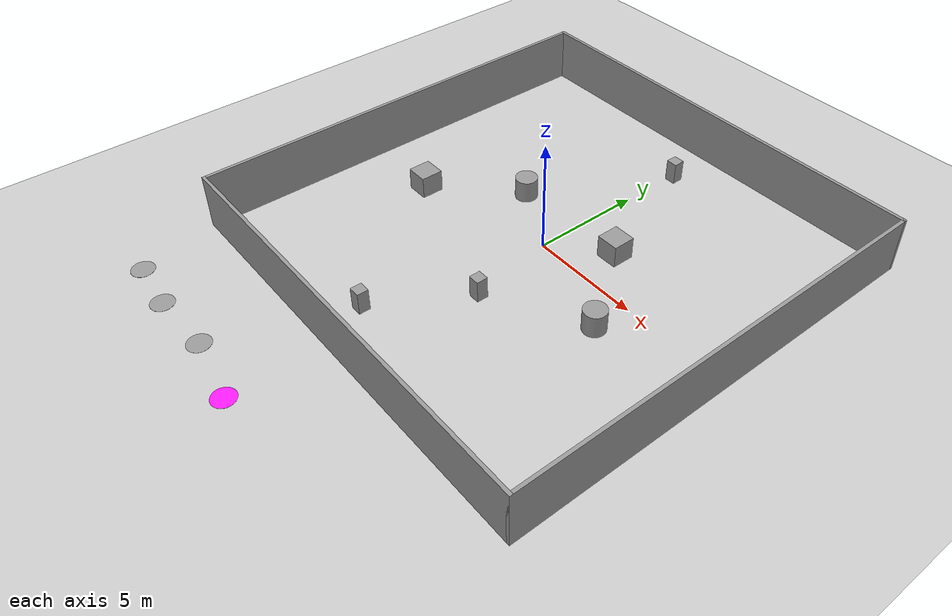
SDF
<sdf version="1.6">
 <world name="default">
  <light name="sun" type="directional">
   <pose>0 0 10 0 -0 0</pose>
   <diffuse>0.8 0.8 0.8 1</diffuse>
   <specular>0.2 0.2 0.2 1</specular>
   <attenuation>
    <range>1000</range>
    <constant>0.9</constant>
    <linear>0.01</linear>
    <quadratic>0.001</quadratic>
   </attenuation>
   <direction>-0.5 0.1 -0.9</direction>
  </light>
  <model name="ground_plane">
   <static>1</static>
   <link name="link">
    <collision name="collision">
     <geometry><plane><normal>0 0 1</normal><size>100 100</size></plane></geometry>
     <surface><friction><ode><mu>100</mu><mu2>50</mu2></ode></friction></surface>
    </collision>
    <visual name="visual">
     <cast_shadows>0</cast_shadows>
     <geometry><plane><normal>0 0 1</normal><size>100 100</size></plane></geometry>
     <material>
      <script><uri>file://media/materials/scripts/gazebo.material</uri><name>Gazebo/Grey</name></script>
     </material>
    </visual>
   </link>
  </model>
  <gravity>0 0 -9.8</gravity>
  <magnetic_field>6e-06 2.3e-05 -4.2e-05</magnetic_field>
  <atmosphere type="adiabatic"/>
  <physics name="default_physics" default="0" type="ode">
   <max_step_size>0.001</max_step_size>
   <real_time_factor>1</real_time_factor>
   <real_time_update_rate>1000</real_time_update_rate>
  </physics>
  <scene><ambient>0.4 0.4 0.4 1</ambient><background>0.7 0.7 0.7 1</background><shadows>1</shadows></scene>
  <spherical_coordinates>
   <surface_model>EARTH_WGS84</surface_model>
   <latitude_deg>0</latitude_deg>
   <longitude_deg>0</longitude_deg>
   <elevation>0</elevation>
   <heading_deg>0</heading_deg>
  </spherical_coordinates>
  <model name="gazebo_sac_train_2020">
   <link name="Wall_3">
    <collision name="Wall_3_Collision">
     <geometry><box><size>20 0.15 2.5</size></box></geometry>
     <pose>0 0 1.25 0 -0 0</pose>
    </collision>
    <visual name="Wall_3_Visual">
     <pose>0 0 1.25 0 -0 0</pose>
     <geometry><box><size>20 0.15 2.5</size></box></geometry>
     <material>
      <script><uri>file://media/materials/scripts/gazebo.material</uri><name>Gazebo/Grey</name></script>
      <ambient>1 1 1 1</ambient>
     </material>
     <meta><layer>0</layer></meta>
    </visual>
    <pose>-9.925 -0 0 0 -0 -1.5708</pose>
   </link>
   <link name="Wall_4">
    <collision name="Wall_4_Collision">
     <geometry><box><size>20 0.15 2.5</size></box></geometry>
     <pose>0 0 1.25 0 -0 0</pose>
    </collision>
    <visual name="Wall_4_Visual">
     <pose>0 0 1.25 0 -0 0</pose>
     <geometry><box><size>20 0.15 2.5</size></box></geometry>
     <material>
      <script><uri>file://media/materials/scripts/gazebo.material</uri><name>Gazebo/Grey</name></script>
      <ambient>1 1 1 1</ambient>
     </material>
     <meta><layer>0</layer></meta>
    </visual>
    <pose>0 -9.925 0 0 -0 0</pose>
   </link>
   <link name="Wall_5">
    <collision name="Wall_5_Collision">
     <geometry><box><size>20 0.15 2.5</size></box></geometry>
     <pose>0 0 1.25 0 -0 0</pose>
    </collision>
    <visual name="Wall_5_Visual">
     <pose>0 0 1.25 0 -0 0</pose>
     <geometry><box><size>20 0.15 2.5</size></box></geometry>
     <material>
      <script><uri>file://media/materials/scripts/gazebo.material</uri><name>Gazebo/Grey</name></script>
      <ambient>1 1 1 1</ambient>
     </material>
     <meta><layer>0</layer></meta>
    </visual>
    <pose>9.925 -0 0 0 -0 1.5708</pose>
   </link>
   <link name="Wall_6">
    <collision name="Wall_6_Collision">
     <geometry><box><size>20 0.15 2.5</size></box></geometry>
     <pose>0 0 1.25 0 -0 0</pose>
    </collision>
    <visual name="Wall_6_Visual">
     <pose>0 0 1.25 0 -0 0</pose>
     <geometry><box><size>20 0.15 2.5</size></box></geometry>
     <material>
      <script><uri>file://media/materials/scripts/gazebo.material</uri><name>Gazebo/Grey</name></script>
      <ambient>1 1 1 1</ambient>
     </material>
     <meta><layer>0</layer></meta>
    </visual>
    <pose>0 9.925 0 0 -0 3.14159</pose>
   </link>
   <static>1</static>
  </model>
  <model name="unit_box">
   <pose>2.34429 1.84746 0.499995 -1e-05 -0 -0</pose>
   <link name="link">
    <inertial>
     <mass>1</mass>
     <inertia>
      <ixx>0.166667</ixx>
      <ixy>0</ixy>
      <ixz>0</ixz>
      <iyy>0.166667</iyy>
      <iyz>0</iyz>
      <izz>0.166667</izz>
     </inertia>
    </inertial>
    <collision name="collision"><geometry><box><size>1 1 1</size></box></geometry></collision>
    <visual name="visual">
     <geometry><box><size>1 1 1</size></box></geometry>
     <material>
      <script><name>Gazebo/Grey</name><uri>file://media/materials/scripts/gazebo.material</uri></script>
     </material>
    </visual>
   </link>
  </model>
  <model name="unit_box_0">
   <pose>-6.31593 -1.42456 0.499995 -1e-05 -0 -5e-06</pose>
   <link name="link">
    <inertial>
     <mass>1</mass>
     <inertia>
      <ixx>0.166667</ixx>
      <ixy>0</ixy>
      <ixz>0</ixz>
      <iyy>0.166667</iyy>
      <iyz>0</iyz>
      <izz>0.166667</izz>
     </inertia>
    </inertial>
    <collision name="collision"><geometry><box><size>1 1 1</size></box></geometry></collision>
    <visual name="visual">
     <geometry><box><size>1 1 1</size></box></geometry>
     <material>
      <script><name>Gazebo/Grey</name><uri>file://media/materials/scripts/gazebo.material</uri></script>
     </material>
    </visual>
   </link>
  </model>
  <model name="unit_cylinder">
   <pose>-3.09111 1.69649 0.499997 4e-06 2e-06 -0</pose>
   <link name="link">
    <inertial>
     <mass>1</mass>
     <inertia><ixx>0.145833</ixx><ixy>0</ixy><ixz>0</ixz><iyy>0.145833</iyy><iyz>0</iyz><izz>0.125</izz></inertia>
    </inertial>
    <collision name="collision">
     <geometry><cylinder><radius>0.5</radius><length>1</length></cylinder></geometry>
    </collision>
    <visual name="visual">
     <geometry><cylinder><radius>0.5</radius><length>1</length></cylinder></geometry>
     <material>
      <script><name>Gazebo/Grey</name><uri>file://media/materials/scripts/gazebo.material</uri></script>
     </material>
    </visual>
   </link>
  </model>
  <model name="unit_cylinder_0">
   <pose>4.86362 -1.66538 0.499998 3e-06 -3e-06 0</pose>
   <link name="link">
    <inertial>
     <mass>1</mass>
     <inertia><ixx>0.145833</ixx><ixy>0</ixy><ixz>0</ixz><iyy>0.145833</iyy><iyz>0</iyz><izz>0.125</izz></inertia>
    </inertial>
    <collision name="collision">
     <geometry><cylinder><radius>0.5</radius><length>1</length></cylinder></geometry>
    </collision>
    <visual name="visual">
     <geometry><cylinder><radius>0.5</radius><length>1</length></cylinder></geometry>
     <material>
      <script><name>Gazebo/Grey</name><uri>file://media/materials/scripts/gazebo.material</uri></script>
     </material>
    </visual>
   </link>
  </model>
  <model name="goal_box_0">
   <link name="link">
    <inertial>
     <mass>1</mass>
     <inertia><ixx>0.145833</ixx><ixy>0</ixy><ixz>0</ixz><iyy>0.145833</iyy><iyz>0</iyz><izz>0.125</izz></inertia>
    </inertial>
    <pose>0.199304 -0.506615 -2e-06 0 -0 0</pose>
    <visual name="visual">
     <geometry><cylinder><radius>0.5</radius><length>0.01</length></cylinder></geometry>
     <material>
      <script><name>Gazebo/Grey</name><uri>file://media/materials/scripts/gazebo.material</uri></script>
      <shader type="pixel"><normal_map>__default__</normal_map></shader>
      <ambient>0.3 0.3 0.3 1</ambient>
      <diffuse>0.7 0.7 0.7 1</diffuse>
      <specular>0.01 0.01 0.01 1</specular>
      <emissive>1 0 0 1</emissive>
     </material>
    </visual>
    <collision name="collision">
     <geometry><cylinder><radius>0.5</radius><length>1e-05</length></cylinder></geometry>
     <surface>
      <friction>
       <ode><mu>1</mu><mu2>1</mu2><fdir1>0 0 0</fdir1><slip1>0</slip1><slip2>0</slip2></ode>
       <torsional>
        <coefficient>1</coefficient>
        <patch_radius>0</patch_radius>
        <surface_radius>0</surface_radius>
        <use_patch_radius>1</use_patch_radius>
        <ode><slip>0</slip></ode>
       </torsional>
      </friction>
      <bounce><restitution_coefficient>0</restitution_coefficient><threshold>1e+06</threshold></bounce>
      <contact>
       <collide_without_contact>0</collide_without_contact>
       <collide_without_contact_bitmask>1</collide_without_contact_bitmask>
       <collide_bitmask>1</collide_bitmask>
       <ode>
        <soft_cfm>0</soft_cfm>
        <soft_erp>0.2</soft_erp>
        <kp>1e+13</kp>
        <kd>1</kd>
        <max_vel>0.01</max_vel>
        <min_depth>0</min_depth>
       </ode>
       <bullet>
        <split_impulse>1</split_impulse>
        <split_impulse_penetration_threshold>-0.01</split_impulse_penetration_threshold>
        <soft_cfm>0</soft_cfm>
        <soft_erp>0.2</soft_erp>
        <kp>1e+13</kp>
        <kd>1</kd>
       </bullet>
      </contact>
     </surface>
    </collision>
   </link>
   <static>0</static>
   <pose>-9.33388 -12.9777 4e-06 0 -0 0</pose>
  </model>
  <model name="goal_box_1">
   <link name="link">
    <inertial>
     <mass>1</mass>
     <inertia><ixx>0.145833</ixx><ixy>0</ixy><ixz>0</ixz><iyy>0.145833</iyy><iyz>0</iyz><izz>0.125</izz></inertia>
    </inertial>
    <pose>0.199304 -0.506615 -2e-06 0 -0 0</pose>
    <visual name="visual">
     <geometry><cylinder><radius>0.5</radius><length>0.01</length></cylinder></geometry>
     <material>
      <script><name>Gazebo/Grey</name><uri>file://media/materials/scripts/gazebo.material</uri></script>
      <shader type="pixel"><normal_map>__default__</normal_map></shader>
      <ambient>0.3 0.3 0.3 1</ambient>
      <diffuse>0.7 0.7 0.7 1</diffuse>
      <specular>0.01 0.01 0.01 1</specular>
      <emissive>0 1 0 1</emissive>
     </material>
    </visual>
    <collision name="collision">
     <geometry><cylinder><radius>0.5</radius><length>1e-05</length></cylinder></geometry>
     <surface>
      <friction>
       <ode><mu>1</mu><mu2>1</mu2><fdir1>0 0 0</fdir1><slip1>0</slip1><slip2>0</slip2></ode>
       <torsional>
        <coefficient>1</coefficient>
        <patch_radius>0</patch_radius>
        <surface_radius>0</surface_radius>
        <use_patch_radius>1</use_patch_radius>
        <ode><slip>0</slip></ode>
       </torsional>
      </friction>
      <bounce><restitution_coefficient>0</restitution_coefficient><threshold>1e+06</threshold></bounce>
      <contact>
       <collide_without_contact>0</collide_without_contact>
       <collide_without_contact_bitmask>1</collide_without_contact_bitmask>
       <collide_bitmask>1</collide_bitmask>
       <ode>
        <soft_cfm>0</soft_cfm>
        <soft_erp>0.2</soft_erp>
        <kp>1e+13</kp>
        <kd>1</kd>
        <max_vel>0.01</max_vel>
        <min_depth>0</min_depth>
       </ode>
       <bullet>
        <split_impulse>1</split_impulse>
        <split_impulse_penetration_threshold>-0.01</split_impulse_penetration_threshold>
        <soft_cfm>0</soft_cfm>
        <soft_erp>0.2</soft_erp>
        <kp>1e+13</kp>
        <kd>1</kd>
       </bullet>
      </contact>
     </surface>
    </collision>
   </link>
   <static>0</static>
   <pose>-6.97947 -13.187 -0 0 -0 0</pose>
  </model>
  <model name="goal_box_2">
   <link name="link">
    <inertial>
     <mass>1</mass>
     <inertia><ixx>0.145833</ixx><ixy>0</ixy><ixz>0</ixz><iyy>0.145833</iyy><iyz>0</iyz><izz>0.125</izz></inertia>
    </inertial>
    <pose>0.199304 -0.506615 -2e-06 0 -0 0</pose>
    <visual name="visual">
     <geometry><cylinder><radius>0.5</radius><length>0.01</length></cylinder></geometry>
     <material>
      <script><name>Gazebo/Grey</name><uri>file://media/materials/scripts/gazebo.material</uri></script>
      <shader type="pixel"><normal_map>__default__</normal_map></shader>
      <ambient>0.3 0.3 0.3 1</ambient>
      <diffuse>0.7 0.7 0.7 1</diffuse>
      <specular>0.01 0.01 0.01 1</specular>
      <emissive>0 0 1 1</emissive>
     </material>
    </visual>
    <collision name="collision">
     <geometry><cylinder><radius>0.5</radius><length>1e-05</length></cylinder></geometry>
     <surface>
      <friction>
       <ode><mu>1</mu><mu2>1</mu2><fdir1>0 0 0</fdir1><slip1>0</slip1><slip2>0</slip2></ode>
       <torsional>
        <coefficient>1</coefficient>
        <patch_radius>0</patch_radius>
        <surface_radius>0</surface_radius>
        <use_patch_radius>1</use_patch_radius>
        <ode><slip>0</slip></ode>
       </torsional>
      </friction>
      <bounce><restitution_coefficient>0</restitution_coefficient><threshold>1e+06</threshold></bounce>
      <contact>
       <collide_without_contact>0</collide_without_contact>
       <collide_without_contact_bitmask>1</collide_without_contact_bitmask>
       <collide_bitmask>1</collide_bitmask>
       <ode>
        <soft_cfm>0</soft_cfm>
        <soft_erp>0.2</soft_erp>
        <kp>1e+13</kp>
        <kd>1</kd>
        <max_vel>0.01</max_vel>
        <min_depth>0</min_depth>
       </ode>
       <bullet>
        <split_impulse>1</split_impulse>
        <split_impulse_penetration_threshold>-0.01</split_impulse_penetration_threshold>
        <soft_cfm>0</soft_cfm>
        <soft_erp>0.2</soft_erp>
        <kp>1e+13</kp>
        <kd>1</kd>
       </bullet>
      </contact>
     </surface>
    </collision>
   </link>
   <static>0</static>
   <pose>-4.06016 -13.0414 4e-06 0 -0 0</pose>
  </model>
  <model name="goal_box_3">
   <link name="link">
    <inertial>
     <mass>1</mass>
     <inertia><ixx>0.145833</ixx><ixy>0</ixy><ixz>0</ixz><iyy>0.145833</iyy><iyz>0</iyz><izz>0.125</izz></inertia>
    </inertial>
    <pose>0.199304 -0.506615 -2e-06 0 -0 0</pose>
    <visual name="visual">
     <geometry><cylinder><radius>0.5</radius><length>0.01</length></cylinder></geometry>
     <material>
      <script><name>Gazebo/Grey</name><uri>file://media/materials/scripts/gazebo.material</uri></script>
      <shader type="pixel"><normal_map>__default__</normal_map></shader>
      <ambient>1 1 1 1</ambient>
      <diffuse>1 0.1 1 1</diffuse>
      <specular>1 1 1 1</specular>
      <emissive>1 1 1 1</emissive>
     </material>
    </visual>
    <collision name="collision">
     <geometry><cylinder><radius>0.5</radius><length>1e-05</length></cylinder></geometry>
     <surface>
      <friction>
       <ode><mu>1</mu><mu2>1</mu2><fdir1>0 0 0</fdir1><slip1>0</slip1><slip2>0</slip2></ode>
       <torsional>
        <coefficient>1</coefficient>
        <patch_radius>0</patch_radius>
        <surface_radius>0</surface_radius>
        <use_patch_radius>1</use_patch_radius>
        <ode><slip>0</slip></ode>
       </torsional>
      </friction>
      <bounce><restitution_coefficient>0</restitution_coefficient><threshold>1e+06</threshold></bounce>
      <contact>
       <collide_without_contact>0</collide_without_contact>
       <collide_without_contact_bitmask>1</collide_without_contact_bitmask>
       <collide_bitmask>1</collide_bitmask>
       <ode>
        <soft_cfm>0</soft_cfm>
        <soft_erp>0.2</soft_erp>
        <kp>1e+13</kp>
        <kd>1</kd>
        <max_vel>0.01</max_vel>
        <min_depth>0</min_depth>
       </ode>
       <bullet>
        <split_impulse>1</split_impulse>
        <split_impulse_penetration_threshold>-0.01</split_impulse_penetration_threshold>
        <soft_cfm>0</soft_cfm>
        <soft_erp>0.2</soft_erp>
        <kp>1e+13</kp>
        <kd>1</kd>
       </bullet>
      </contact>
     </surface>
    </collision>
   </link>
   <static>0</static>
   <pose>-1.06027 -13.5315 -0 0 -0 0</pose>
  </model>
  <model name="unit_box_0505">
   <link name="link">
    <inertial>
     <mass>1</mass>
     <inertia>
      <ixx>0.166667</ixx>
      <ixy>0</ixy>
      <ixz>0</ixz>
      <iyy>0.166667</iyy>
      <iyz>0</iyz>
      <izz>0.166667</izz>
     </inertia>
    </inertial>
    <visual name="visual">
     <geometry><box><size>0.5 0.5 1</size></box></geometry>
     <material>
      <script><name>Gazebo/Grey</name><uri>file://media/materials/scripts/gazebo.material</uri></script>
      <shader type="pixel"><normal_map>__default__</normal_map></shader>
      <ambient>0.3 0.3 0.3 1</ambient>
      <diffuse>0.7 0.7 0.7 1</diffuse>
      <specular>0.01 0.01 0.01 1</specular>
      <emissive>0 0 0 1</emissive>
     </material>
    </visual>
    <collision name="collision">
     <geometry><box><size>0.5 0.5 1</size></box></geometry>
     <surface>
      <friction>
       <ode><mu>1</mu><mu2>1</mu2><fdir1>0 0 0</fdir1><slip1>0</slip1><slip2>0</slip2></ode>
       <torsional>
        <coefficient>1</coefficient>
        <patch_radius>0</patch_radius>
        <surface_radius>0</surface_radius>
        <use_patch_radius>1</use_patch_radius>
        <ode><slip>0</slip></ode>
       </torsional>
      </friction>
      <bounce><restitution_coefficient>0</restitution_coefficient><threshold>1e+06</threshold></bounce>
      <contact>
       <collide_without_contact>0</collide_without_contact>
       <collide_without_contact_bitmask>1</collide_without_contact_bitmask>
       <collide_bitmask>1</collide_bitmask>
       <ode>
        <soft_cfm>0</soft_cfm>
        <soft_erp>0.2</soft_erp>
        <kp>1e+13</kp>
        <kd>1</kd>
        <max_vel>0.01</max_vel>
        <min_depth>0</min_depth>
       </ode>
       <bullet>
        <split_impulse>1</split_impulse>
        <split_impulse_penetration_threshold>-0.01</split_impulse_penetration_threshold>
        <soft_cfm>0</soft_cfm>
        <soft_erp>0.2</soft_erp>
        <kp>1e+13</kp>
        <kd>1</kd>
       </bullet>
      </contact>
     </surface>
    </collision>
   </link>
   <static>0</static>
   <pose>0.710109 -3.93759 0.499998 -2e-06 -6e-06 -1.7e-05</pose>
  </model>
  <model name="unit_box_0505_0">
   <link name="link">
    <inertial>
     <mass>1</mass>
     <inertia>
      <ixx>0.166667</ixx>
      <ixy>0</ixy>
      <ixz>0</ixz>
      <iyy>0.166667</iyy>
      <iyz>0</iyz>
      <izz>0.166667</izz>
     </inertia>
    </inertial>
    <visual name="visual">
     <geometry><box><size>0.5 0.5 1</size></box></geometry>
     <material>
      <script><name>Gazebo/Grey</name><uri>file://media/materials/scripts/gazebo.material</uri></script>
      <shader type="pixel"><normal_map>__default__</normal_map></shader>
      <ambient>0.3 0.3 0.3 1</ambient>
      <diffuse>0.7 0.7 0.7 1</diffuse>
      <specular>0.01 0.01 0.01 1</specular>
      <emissive>0 0 0 1</emissive>
     </material>
    </visual>
    <collision name="collision">
     <geometry><box><size>0.5 0.5 1</size></box></geometry>
     <surface>
      <friction>
       <ode><mu>1</mu><mu2>1</mu2><fdir1>0 0 0</fdir1><slip1>0</slip1><slip2>0</slip2></ode>
       <torsional>
        <coefficient>1</coefficient>
        <patch_radius>0</patch_radius>
        <surface_radius>0</surface_radius>
        <use_patch_radius>1</use_patch_radius>
        <ode><slip>0</slip></ode>
       </torsional>
      </friction>
      <bounce><restitution_coefficient>0</restitution_coefficient><threshold>1e+06</threshold></bounce>
      <contact>
       <collide_without_contact>0</collide_without_contact>
       <collide_without_contact_bitmask>1</collide_without_contact_bitmask>
       <collide_bitmask>1</collide_bitmask>
       <ode>
        <soft_cfm>0</soft_cfm>
        <soft_erp>0.2</soft_erp>
        <kp>1e+13</kp>
        <kd>1</kd>
        <max_vel>0.01</max_vel>
        <min_depth>0</min_depth>
       </ode>
       <bullet>
        <split_impulse>1</split_impulse>
        <split_impulse_penetration_threshold>-0.01</split_impulse_penetration_threshold>
        <soft_cfm>0</soft_cfm>
        <soft_erp>0.2</soft_erp>
        <kp>1e+13</kp>
        <kd>1</kd>
       </bullet>
      </contact>
     </surface>
    </collision>
   </link>
   <static>0</static>
   <pose>0.19426 7.64097 0.499998 6e-06 1e-06 -2e-06</pose>
  </model>
  <model name="unit_box_0505_1">
   <link name="link">
    <inertial>
     <mass>1</mass>
     <inertia>
      <ixx>0.166667</ixx>
      <ixy>0</ixy>
      <ixz>0</ixz>
      <iyy>0.166667</iyy>
      <iyz>0</iyz>
      <izz>0.166667</izz>
     </inertia>
    </inertial>
    <visual name="visual">
     <geometry><box><size>0.5 0.5 1</size></box></geometry>
     <material>
      <script><name>Gazebo/Grey</name><uri>file://media/materials/scripts/gazebo.material</uri></script>
      <shader type="pixel"><normal_map>__default__</normal_map></shader>
      <ambient>0.3 0.3 0.3 1</ambient>
      <diffuse>0.7 0.7 0.7 1</diffuse>
      <specular>0.01 0.01 0.01 1</specular>
      <emissive>0 0 0 1</emissive>
     </material>
    </visual>
    <collision name="collision">
     <geometry><box><size>0.5 0.5 1</size></box></geometry>
     <surface>
      <friction>
       <ode><mu>1</mu><mu2>1</mu2><fdir1>0 0 0</fdir1><slip1>0</slip1><slip2>0</slip2></ode>
       <torsional>
        <coefficient>1</coefficient>
        <patch_radius>0</patch_radius>
        <surface_radius>0</surface_radius>
        <use_patch_radius>1</use_patch_radius>
        <ode><slip>0</slip></ode>
       </torsional>
      </friction>
      <bounce><restitution_coefficient>0</restitution_coefficient><threshold>1e+06</threshold></bounce>
      <contact>
       <collide_without_contact>0</collide_without_contact>
       <collide_without_contact_bitmask>1</collide_without_contact_bitmask>
       <collide_bitmask>1</collide_bitmask>
       <ode>
        <soft_cfm>0</soft_cfm>
        <soft_erp>0.2</soft_erp>
        <kp>1e+13</kp>
        <kd>1</kd>
        <max_vel>0.01</max_vel>
        <min_depth>0</min_depth>
       </ode>
       <bullet>
        <split_impulse>1</split_impulse>
        <split_impulse_penetration_threshold>-0.01</split_impulse_penetration_threshold>
        <soft_cfm>0</soft_cfm>
        <soft_erp>0.2</soft_erp>
        <kp>1e+13</kp>
        <kd>1</kd>
       </bullet>
      </contact>
     </surface>
    </collision>
   </link>
   <static>0</static>
   <pose>-1.62493 -7.86383 0.499998 3e-06 6e-06 1.2e-05</pose>
  </model>
 </world>
</sdf>
